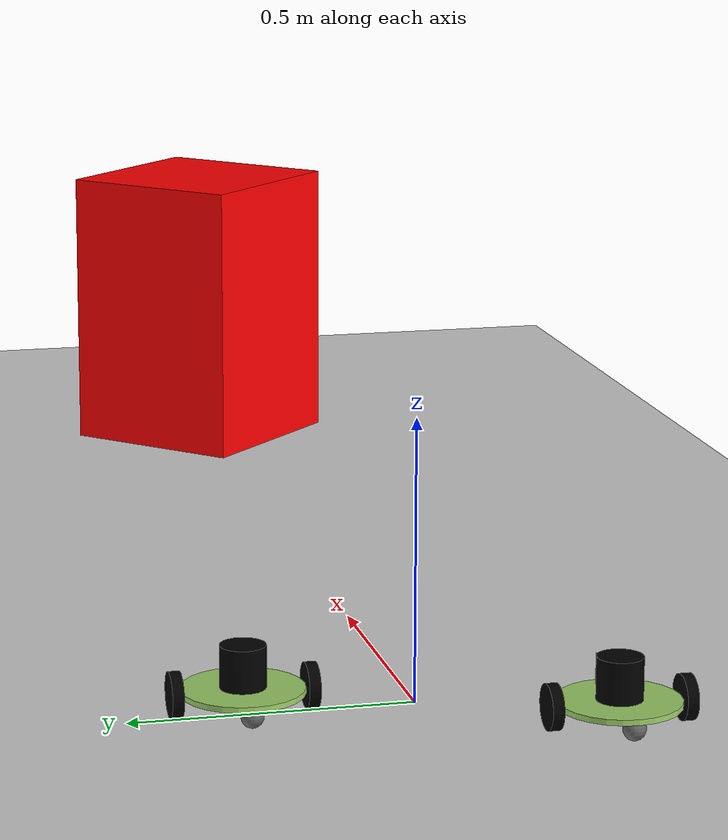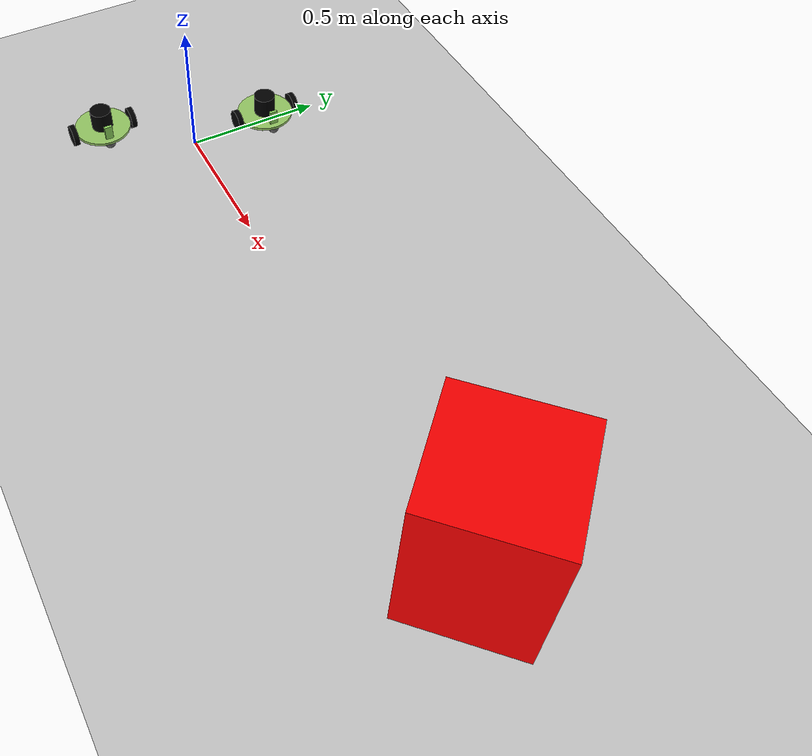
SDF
<?xml version='1.0' encoding='UTF-8'?>
<sdf version="1.8">
    <world name="car_world">
        <physics name="1ms" type="ignored">
            <max_step_size>0.001</max_step_size>
            <real_time_factor>1.0</real_time_factor>
        </physics>
        <plugin filename="gz-sim-physics-system" name="gz::sim::systems::Physics">
        </plugin>
        <plugin filename="gz-sim-user-commands-system" name="gz::sim::systems::UserCommands">
        </plugin>
        <plugin filename="gz-sim-scene-broadcaster-system" name="gz::sim::systems::SceneBroadcaster">
        </plugin>
        <plugin filename="gz-sim-sensors-system" name="gz::sim::systems::Sensors">
            <render_engine>ogre2</render_engine>
        </plugin>

        <light type="directional" name="sun">
            <cast_shadows>true</cast_shadows>
            <pose>0 0 10 0 0 0</pose>
            <diffuse>0.8 0.8 0.8 1</diffuse>
            <specular>0.2 0.2 0.2 1</specular>
            <attenuation>
                <range>1000</range>
                <constant>0.9</constant>
                <linear>0.01</linear>
                <quadratic>0.001</quadratic>
            </attenuation>
            <direction>-0.5 0.1 -0.9</direction>
        </light>

        <model name="ground_plane">
            <static>true</static>
            <link name="link">
                <collision name="collision">
                <geometry>
                    <plane>
                    <normal>0 0 1</normal>
                    </plane>
                </geometry>
                </collision>
                <visual name="visual">
                <geometry>
                    <plane>
                    <normal>0 0 1</normal>
                    <size>8 3</size>
                    </plane>
                </geometry>
                <material>
                    <ambient>0.8 0.8 0.8 1</ambient>
                    <diffuse>0.8 0.8 0.8 1</diffuse>
                    <specular>0.8 0.8 0.8 1</specular>
                </material>
                </visual>
            </link>
        </model>

        <model name="jetbot1" canonical_link="chassis">
            <pose relative_to="world">-0.2 -0.3 0 0 0 0</pose>   <!--the pose is relative to the world by default-->

            <!-- sensor frames -->
            <frame name="lidar_frame" attached_to="chassis">
                <pose>0 0 0.1 0 0 0</pose>
            </frame>

            <frame name="camera_frame" attached_to="chassis">
                <pose>0 0 0.1 0 0 0</pose>
            </frame>

            <!--chassis-->
            <link name="chassis">
                <pose relative_to="__model__">0 0 0.045 0 0 0</pose>
                <inertial> <!--inertial properties of the link mass, inertia matix-->
                    <mass>1.14395</mass>
                    <inertia>
                        <ixx>0.00095329</ixx>
                        <ixy>0</ixy>
                        <ixz>0</ixz>
                        <iyy>0.00381317</iyy>
                        <iyz>0</iyz>
                        <izz>0.00476646</izz>
                    </inertia>
                </inertial>
                <visual name="visual">
                    <geometry>
                        <cylinder>
                            <radius>0.107</radius>
                            <length>0.01</length>
                        </cylinder>
                    </geometry>
                    <!--Color of the link-->
                    <material>
                        <ambient>0.6 0.8 0.4 1</ambient>
                        <diffuse>0.6 0.8 0.4 1</diffuse>
                        <specular>0.6 0.8 0.4 1</specular>
                    </material>
                </visual>
                <collision name="collision">
                    <geometry>
                        <cylinder>
                            <radius>0.107</radius>
                            <length>0.001</length>
                        </cylinder>
                    </geometry>
                </collision>
            </link>

            <!-- LIDAR 3D shape definition -->
            <link name="lidar1">
                <pose relative_to="chassis">0 0 0.04 0 0 0</pose>
                <inertial> <!--inertial properties of the link mass, inertia matix-->
                    <mass>1.14395</mass>
                    <inertia>
                        <ixx>0.00095329</ixx>
                        <ixy>0</ixy>
                        <ixz>0</ixz>
                        <iyy>0.00381317</iyy>
                        <iyz>0</iyz>
                        <izz>0.00476646</izz>
                    </inertia>
                </inertial>
                <visual name="visual">
                    <geometry>
                        <cylinder>
                            <radius>0.04</radius>
                            <length>0.08</length>
                        </cylinder>
                    </geometry>
                    <!--Color of the link-->
                    <material>
                        <ambient>0.0 0.0 0.0 1</ambient>
                        <diffuse>0.0 0.0 0.0 1</diffuse>
                        <specular>0.0 0.0 0.0 1</specular>
                    </material>
                </visual>
                <collision name="collision">
                    <geometry>
                        <cylinder>
                            <radius>0.04</radius>
                            <length>0.08</length>
                        </cylinder>
                    </geometry>
                </collision>

                <!-- LIDAR sensor parameters -->
                <sensor name="gpu_lidar" type="gpu_lidar">"
                    <pose relative_to="lidar_frame">0 0 -0.02 0 0 0</pose>
                    <topic>/J0/lidar</topic>
                    <update_rate>5</update_rate>
                    <ray>
                        <scan>
                            <horizontal>
                                <samples>360</samples>
                                <resolution>1</resolution>
                                <min_angle>-3.14159</min_angle>
                                <max_angle>3.14159</max_angle>
                            </horizontal>
                            <vertical>
                                <samples>1</samples>
                                <resolution>0.01</resolution>
                                <min_angle>0</min_angle>
                                <max_angle>0</max_angle>
                            </vertical>
                        </scan>
                        <range>
                            <min>0.15</min>
                            <max>12.0</max>
                            <resolution>0.01</resolution>
                        </range>
                    </ray>
                    <always_on>1</always_on>
                    <visualize>true</visualize>
                </sensor>
            </link>

            <!-- CAMERA 3D shape definition -->
            <link name="camera1">
                <pose relative_to="chassis">0.08 0 0.03 0 0 0</pose>
                <inertial> <!--inertial properties of the link mass, inertia matix-->
                    <mass>0.1</mass>
                    <inertia>
                        <ixx>0.00095329</ixx>
                        <ixy>0</ixy>
                        <ixz>0</ixz>
                        <iyy>0.00381317</iyy>
                        <iyz>0</iyz>
                        <izz>0.00476646</izz>
                    </inertia>
                </inertial>
                <visual name="visual">
                    <geometry>
                        <box>
                            <size>0.01 0.03 0.06</size>
                        </box>
                    </geometry>
                    <!--Color of the link-->
                    <material>
                        <ambient>0.6 0.9 0.4 1</ambient>
                        <diffuse>0.6 0.9 0.4 1</diffuse>
                        <specular>0.6 0.9 0.4 1</specular>
                    </material>
                </visual>
                <collision name="collision">
                    <geometry>
                        <cylinder>
                            <radius>0.04</radius>
                            <length>0.08</length>
                        </cylinder>
                    </geometry>
                </collision>

                <!-- CAMERA sensor parameters -->
                <sensor name="rgb_camera" type="camera">
                    <pose relative_to="camera_frame">0 0 0 0 0 0</pose>
                    <always_on>true</always_on>
                    <visualize>true</visualize>
                    <update_rate>5</update_rate>
                    <topic>/J0/camera/image_raw</topic>
                    <gz_frame_id>camera_rgb_frame</gz_frame_id>
                    <camera name="intel_realsense_r200">
                        <camera_info_topic>/J0/camera/camera_info</camera_info_topic>
                        <horizontal_fov>1.02974</horizontal_fov>
                        <image>
                            <width>320</width>
                            <height>240</height>
                            <format>R8G8B8</format>
                        </image>
                        <clip>
                            <near>0.02</near>
                            <far>300</far>
                        </clip>
                    </camera>
                </sensor>
            </link>

            <!--Left wheel 3D shape definition-->
            <link name="left_wheel">
                <pose relative_to="chassis">0 0.117 0 -1.5707 0 0</pose> <!--angles are in radian-->
                <inertial>
                    <mass>1</mass>
                    <inertia>
                        <ixx>0.00043333</ixx>
                        <ixy>0</ixy>
                        <ixz>0</ixz>
                        <iyy>0.00043333</iyy>
                        <iyz>0</iyz>
                        <izz>0.0008</izz>
                    </inertia>
                </inertial>
                <visual name="visual">
                    <geometry>
                        <cylinder>
                            <radius>0.04</radius>
                            <length>0.02</length>
                        </cylinder>
                    </geometry>
                    <material>
                        <ambient>0.0 0.0 0.0 1</ambient>
                        <diffuse>0.0 0.0 0.0 1</diffuse>
                        <specular>0.0 0.0 0.0 1</specular>
                    </material>
                </visual>
                <collision name="collision">
                    <geometry>
                        <cylinder>
                            <radius>0.04</radius>
                            <length>0.02</length>
                        </cylinder>
                    </geometry>
                </collision>
            </link>

            <!--Right wheel 3D shape definition-->
            <link name="right_wheel">
                <pose relative_to="chassis">0 -0.117 0 -1.5707 0 0</pose> <!--angles are in radian-->
                <inertial>
                    <mass>1</mass>
                    <inertia>
                        <ixx>0.00043333</ixx>
                        <ixy>0</ixy>
                        <ixz>0</ixz>
                        <iyy>0.00043333</iyy>
                        <iyz>0</iyz>
                        <izz>0.0008</izz>
                    </inertia>
                </inertial>
                <visual name="visual">
                    <geometry>
                        <cylinder>
                            <radius>0.04</radius>
                            <length>0.02</length>
                        </cylinder>
                    </geometry>
                    <material>
                        <ambient>0.0 0.0 0.0 1</ambient>
                        <diffuse>0.0 0.0 0.0 1</diffuse>
                        <specular>0.0 0.0 0.0 1</specular>
                    </material>
                </visual>
                <collision name="collision">
                    <geometry>
                        <cylinder>
                            <radius>0.04</radius>
                            <length>0.02</length>
                        </cylinder>
                    </geometry>
                </collision>
            </link>

            <!--arbitrary frame-->
            <frame name="caster_frame0" attached_to="chassis">
                <pose>0.08 0 -0.02 0 0 0</pose>
            </frame>

            <!--caster wheel-->
            <link name="caster0">
                <pose relative_to="caster_frame0"/>
                <inertial>
                    <mass>1</mass>
                    <inertia>
                        <ixx>0.00016</ixx>
                        <ixy>0</ixy>
                        <ixz>0</ixz>
                        <iyy>0.00016</iyy>
                        <iyz>0</iyz>
                        <izz>0.00016</izz>
                    </inertia>
                </inertial>
                <visual name="visual">
                    <geometry>
                        <sphere>
                            <radius>0.02</radius>
                        </sphere>
                    </geometry>
                    <material>
                        <ambient>1 1 1 1</ambient>
                        <diffuse>0.4 0.4 0.4 1</diffuse>
                        <specular>0.4 0.4 0.4 1</specular>
                    </material>
                </visual>
                <collision name="collision">
                    <geometry>
                        <sphere>
                            <radius>0.02</radius>
                        </sphere>
                    </geometry>
                </collision>
            </link>

            <!--arbitrary frame-->
            <frame name="caster_frame1" attached_to="chassis">
                <pose>-0.08 0 -0.02 0 0 0</pose>
            </frame>

            <!--caster wheel-->
            <link name="caster1">
                <pose relative_to="caster_frame1"/>
                <inertial>
                    <mass>1</mass>
                    <inertia>
                        <ixx>0.00016</ixx>
                        <ixy>0</ixy>
                        <ixz>0</ixz>
                        <iyy>0.00016</iyy>
                        <iyz>0</iyz>
                        <izz>0.00016</izz>
                    </inertia>
                </inertial>
                <visual name="visual">
                    <geometry>
                        <sphere>
                            <radius>0.02</radius>
                        </sphere>
                    </geometry>
                    <material>
                        <ambient>0.4 0.4 0.4 1</ambient>
                        <diffuse>0.4 0.4 0.4 1</diffuse>
                        <specular>0.4 0.4 0.4 1</specular>
                    </material>
                </visual>
                <collision name="collision">
                    <geometry>
                        <sphere>
                            <radius>0.02</radius>
                        </sphere>
                    </geometry>
                </collision>
            </link>

            <!--left wheel joint-->
            <joint name="left_wheel_joint" type="revolute">
                <pose relative_to="left_wheel"/>
                <parent>chassis</parent>
                <child>left_wheel</child>
                <axis>
                    <xyz expressed_in="__model__">0 1 0</xyz> <!--can be descired to any frame or even arbitrary frames-->
                    <limit>
                        <lower>-1.79769e+308</lower>    <!--negative infinity-->
                        <upper>1.79769e+308</upper>     <!--positive infinity-->
                    </limit>
                </axis>
            </joint>

            <!--right wheel joint-->
            <joint name="right_wheel_joint" type="revolute">
                <pose relative_to="right_wheel"/>
                <parent>chassis</parent>
                <child>right_wheel</child>
                <axis>
                    <xyz expressed_in="__model__">0 1 0</xyz>
                    <limit>
                        <lower>-1.79769e+308</lower>    <!--negative infinity-->
                        <upper>1.79769e+308</upper>     <!--positive infinity-->
                    </limit>
                </axis>
            </joint>

            <!--caster wheel joint--> <!--pose defult value is the child-->
            <joint name="caster_wheel_front" type="ball">
                <parent>chassis</parent>
                <child>caster0</child>
            </joint>
            <joint name="caster_wheel_rear" type="ball">
                <parent>chassis</parent>
                <child>caster1</child>
            </joint>

            <joint name="lidar_joint" type="fixed">
                <parent>chassis</parent>
                <child>lidar1</child>
            </joint>

            <joint name="camera_joint" type="fixed">
                <parent>chassis</parent>
                <child>camera1</child>
            </joint>

            <!-- cmd_vel and odometry -->
            <plugin filename="gz-sim-diff-drive-system" name="gz::sim::systems::DiffDrive">
                <left_joint>left_wheel_joint</left_joint>
                <right_joint>right_wheel_joint</right_joint>
                <wheel_separation>0.12</wheel_separation>
                <wheel_radius>0.04</wheel_radius>
                <odom_publish_frequency>1</odom_publish_frequency>
                <topic>/J0/cmd_vel</topic>
                <odom_topic>/J0/odom</odom_topic>
                <tf_topic>/J0/tf</tf_topic>
            </plugin>

        </model>

        <model name="jetbot2" canonical_link="chassis">
            <pose relative_to="world">0 0.3 0 0 0 0</pose>   <!--the pose is relative to the world by default-->

            <!-- sensor frames -->
            <frame name="lidar_frame" attached_to="chassis">
                <pose>0 0 0.1 0 0 0</pose>
            </frame>

            <frame name="camera_frame" attached_to="chassis">
                <pose>0 0 0.1 0 0 0</pose>
            </frame>

            <!--chassis-->
            <link name="chassis">
                <pose relative_to="__model__">0 0 0.045 0 0 0</pose>
                <inertial> <!--inertial properties of the link mass, inertia matix-->
                    <mass>1.14395</mass>
                    <inertia>
                        <ixx>0.00095329</ixx>
                        <ixy>0</ixy>
                        <ixz>0</ixz>
                        <iyy>0.00381317</iyy>
                        <iyz>0</iyz>
                        <izz>0.00476646</izz>
                    </inertia>
                </inertial>
                <visual name="visual">
                    <geometry>
                        <cylinder>
                            <radius>0.107</radius>
                            <length>0.01</length>
                        </cylinder>
                    </geometry>
                    <!--Color of the link-->
                    <material>
                        <ambient>0.6 0.8 0.4 1</ambient>
                        <diffuse>0.6 0.8 0.4 1</diffuse>
                        <specular>0.6 0.8 0.4 1</specular>
                    </material>
                </visual>
                <collision name="collision">
                    <geometry>
                        <cylinder>
                            <radius>0.107</radius>
                            <length>0.001</length>
                        </cylinder>
                    </geometry>
                </collision>
            </link>

            <!-- LIDAR 3D shape definition -->
            <link name="lidar2">
                <pose relative_to="chassis">0 0 0.04 0 0 0</pose>
                <inertial> <!--inertial properties of the link mass, inertia matix-->
                    <mass>1.14395</mass>
                    <inertia>
                        <ixx>0.00095329</ixx>
                        <ixy>0</ixy>
                        <ixz>0</ixz>
                        <iyy>0.00381317</iyy>
                        <iyz>0</iyz>
                        <izz>0.00476646</izz>
                    </inertia>
                </inertial>
                <visual name="visual">
                    <geometry>
                        <cylinder>
                            <radius>0.04</radius>
                            <length>0.08</length>
                        </cylinder>
                    </geometry>
                    <!--Color of the link-->
                    <material>
                        <ambient>0.0 0.0 0.0 1</ambient>
                        <diffuse>0.0 0.0 0.0 1</diffuse>
                        <specular>0.0 0.0 0.0 1</specular>
                    </material>
                </visual>
                <collision name="collision">
                    <geometry>
                        <cylinder>
                            <radius>0.04</radius>
                            <length>0.08</length>
                        </cylinder>
                    </geometry>
                </collision>

                <!-- LIDAR sensor parameters -->
                <sensor name="gpu_lidar" type="gpu_lidar">"
                    <pose relative_to="lidar_frame">0 0 -0.02 0 0 0</pose>
                    <topic>/J1/lidar</topic>
                    <update_rate>5</update_rate>
                    <ray>
                        <scan>
                            <horizontal>
                                <samples>360</samples>
                                <resolution>1</resolution>
                                <min_angle>-3.14159</min_angle>
                                <max_angle>3.14159</max_angle>
                            </horizontal>
                            <vertical>
                                <samples>1</samples>
                                <resolution>0.01</resolution>
                                <min_angle>0</min_angle>
                                <max_angle>0</max_angle>
                            </vertical>
                        </scan>
                        <range>
                            <min>0.15</min>
                            <max>12.0</max>
                            <resolution>0.01</resolution>
                        </range>
                    </ray>
                    <always_on>1</always_on>
                    <visualize>true</visualize>
                </sensor>
            </link>

            <!-- CAMERA 3D shape definition -->
            <link name="camera2">
                <pose relative_to="chassis">0.08 0 0.03 0 0 0</pose>
                <inertial> <!--inertial properties of the link mass, inertia matix-->
                    <mass>0.1</mass>
                    <inertia>
                        <ixx>0.00095329</ixx>
                        <ixy>0</ixy>
                        <ixz>0</ixz>
                        <iyy>0.00381317</iyy>
                        <iyz>0</iyz>
                        <izz>0.00476646</izz>
                    </inertia>
                </inertial>
                <visual name="visual">
                    <geometry>
                        <box>
                            <size>0.01 0.03 0.06</size>
                        </box>
                    </geometry>
                    <!--Color of the link-->
                    <material>
                        <ambient>0.6 0.9 0.4 1</ambient>
                        <diffuse>0.6 0.9 0.4 1</diffuse>
                        <specular>0.6 0.9 0.4 1</specular>
                    </material>
                </visual>
                <collision name="collision">
                    <geometry>
                        <cylinder>
                            <radius>0.04</radius>
                            <length>0.08</length>
                        </cylinder>
                    </geometry>
                </collision>

                <!-- CAMERA sensor parameters -->
                <sensor name="rgb_camera" type="camera">
                    <pose relative_to="camera_frame">0 0 0 0 0 0</pose>
                    <always_on>true</always_on>
                    <visualize>true</visualize>
                    <update_rate>5</update_rate>
                    <topic>/J1/camera/image_raw</topic>
                    <gz_frame_id>camera_rgb_frame</gz_frame_id>
                    <camera name="intel_realsense_r200">
                        <camera_info_topic>/J1/camera/camera_info</camera_info_topic>
                        <horizontal_fov>1.02974</horizontal_fov>
                        <image>
                            <width>320</width>
                            <height>240</height>
                            <format>R8G8B8</format>
                        </image>
                        <clip>
                            <near>0.02</near>
                            <far>300</far>
                        </clip>
                    </camera>
                </sensor>
            </link>

            <!--Left wheel 3D shape definition-->
            <link name="left_wheel">
                <pose relative_to="chassis">0 0.117 0 -1.5707 0 0</pose> <!--angles are in radian-->
                <inertial>
                    <mass>1</mass>
                    <inertia>
                        <ixx>0.00043333</ixx>
                        <ixy>0</ixy>
                        <ixz>0</ixz>
                        <iyy>0.00043333</iyy>
                        <iyz>0</iyz>
                        <izz>0.0008</izz>
                    </inertia>
                </inertial>
                <visual name="visual">
                    <geometry>
                        <cylinder>
                            <radius>0.04</radius>
                            <length>0.02</length>
                        </cylinder>
                    </geometry>
                    <material>
                        <ambient>0.0 0.0 0.0 1</ambient>
                        <diffuse>0.0 0.0 0.0 1</diffuse>
                        <specular>0.0 0.0 0.0 1</specular>
                    </material>
                </visual>
                <collision name="collision">
                    <geometry>
                        <cylinder>
                            <radius>0.04</radius>
                            <length>0.02</length>
                        </cylinder>
                    </geometry>
                </collision>
            </link>

            <!--Right wheel 3D shape definition-->
            <link name="right_wheel">
                <pose relative_to="chassis">0 -0.117 0 -1.5707 0 0</pose> <!--angles are in radian-->
                <inertial>
                    <mass>1</mass>
                    <inertia>
                        <ixx>0.00043333</ixx>
                        <ixy>0</ixy>
                        <ixz>0</ixz>
                        <iyy>0.00043333</iyy>
                        <iyz>0</iyz>
                        <izz>0.0008</izz>
                    </inertia>
                </inertial>
                <visual name="visual">
                    <geometry>
                        <cylinder>
                            <radius>0.04</radius>
                            <length>0.02</length>
                        </cylinder>
                    </geometry>
                    <material>
                        <ambient>0.0 0.0 0.0 1</ambient>
                        <diffuse>0.0 0.0 0.0 1</diffuse>
                        <specular>0.0 0.0 0.0 1</specular>
                    </material>
                </visual>
                <collision name="collision">
                    <geometry>
                        <cylinder>
                            <radius>0.04</radius>
                            <length>0.02</length>
                        </cylinder>
                    </geometry>
                </collision>
            </link>

            <!--arbitrary frame-->
            <frame name="caster_frame0" attached_to="chassis">
                <pose>0.08 0 -0.02 0 0 0</pose>
            </frame>

            <!--caster wheel-->
            <link name="caster0">
                <pose relative_to="caster_frame0"/>
                <inertial>
                    <mass>1</mass>
                    <inertia>
                        <ixx>0.00016</ixx>
                        <ixy>0</ixy>
                        <ixz>0</ixz>
                        <iyy>0.00016</iyy>
                        <iyz>0</iyz>
                        <izz>0.00016</izz>
                    </inertia>
                </inertial>
                <visual name="visual">
                    <geometry>
                        <sphere>
                            <radius>0.02</radius>
                        </sphere>
                    </geometry>
                    <material>
                        <ambient>0.4 0.4 0.4 1</ambient>
                        <diffuse>0.4 0.4 0.4 1</diffuse>
                        <specular>0.4 0.4 0.4 1</specular>
                    </material>
                </visual>
                <collision name="collision">
                    <geometry>
                        <sphere>
                            <radius>0.02</radius>
                        </sphere>
                    </geometry>
                </collision>
            </link>

            <!--arbitrary frame-->
            <frame name="caster_frame1" attached_to="chassis">
                <pose>-0.08 0 -0.02 0 0 0</pose>
            </frame>

            <!--caster wheel-->
            <link name="caster1">
                <pose relative_to="caster_frame1"/>
                <inertial>
                    <mass>1</mass>
                    <inertia>
                        <ixx>0.00016</ixx>
                        <ixy>0</ixy>
                        <ixz>0</ixz>
                        <iyy>0.00016</iyy>
                        <iyz>0</iyz>
                        <izz>0.00016</izz>
                    </inertia>
                </inertial>
                <visual name="visual">
                    <geometry>
                        <sphere>
                            <radius>0.02</radius>
                        </sphere>
                    </geometry>
                    <material>
                        <ambient>0.4 0.4 0.4 1</ambient>
                        <diffuse>0.4 0.4 0.4 1</diffuse>
                        <specular>0.4 0.4 0.4 1</specular>
                    </material>
                </visual>
                <collision name="collision">
                    <geometry>
                        <sphere>
                            <radius>0.02</radius>
                        </sphere>
                    </geometry>
                </collision>
            </link>

            <!--left wheel joint-->
            <joint name="left_wheel_joint" type="revolute">
                <pose relative_to="left_wheel"/>
                <parent>chassis</parent>
                <child>left_wheel</child>
                <axis>
                    <xyz expressed_in="__model__">0 1 0</xyz> <!--can be descired to any frame or even arbitrary frames-->
                    <limit>
                        <lower>-1.79769e+308</lower>    <!--negative infinity-->
                        <upper>1.79769e+308</upper>     <!--positive infinity-->
                    </limit>
                </axis>
            </joint>

            <!--right wheel joint-->
            <joint name="right_wheel_joint" type="revolute">
                <pose relative_to="right_wheel"/>
                <parent>chassis</parent>
                <child>right_wheel</child>
                <axis>
                    <xyz expressed_in="__model__">0 1 0</xyz>
                    <limit>
                        <lower>-1.79769e+308</lower>    <!--negative infinity-->
                        <upper>1.79769e+308</upper>     <!--positive infinity-->
                    </limit>
                </axis>
            </joint>

            <!--caster wheel joint--> <!--pose defult value is the child-->
            <joint name="caster_wheel_front" type="ball">
                <parent>chassis</parent>
                <child>caster0</child>
            </joint>
            <joint name="caster_wheel_rear" type="ball">
                <parent>chassis</parent>
                <child>caster1</child>
            </joint>

            <joint name="lidar_joint" type="fixed">
                <parent>chassis</parent>
                <child>lidar2</child>
            </joint>

            <joint name="camera_joint" type="fixed">
                <parent>chassis</parent>
                <child>camera2</child>
            </joint>

            <!-- cmd_vel and odometry -->
            <plugin filename="gz-sim-diff-drive-system" name="gz::sim::systems::DiffDrive">
                <left_joint>left_wheel_joint</left_joint>
                <right_joint>right_wheel_joint</right_joint>
                <wheel_separation>0.12</wheel_separation>
                <wheel_radius>0.04</wheel_radius>
                <odom_publish_frequency>1</odom_publish_frequency>
                <topic>/J1/cmd_vel</topic>
                <odom_topic>/J1/odom</odom_topic>
                <tf_topic>/J1/tf</tf_topic>
            </plugin>

        </model>

        <model name="box_obstacle">
            <pose relative_to="world"> 2 0 0.3 0 0 0.785</pose> <link name="box_link">
                <inertial>
                <mass>1.0</mass>
                <inertia>
                    <ixx>0.01</ixx>
                    <ixy>0</ixy>
                    <ixz>0</ixz>
                    <iyy>0.01</iyy>
                    <iyz>0</iyz>
                    <izz>0.01</izz>
                </inertia>
                </inertial>
                <collision name="collision">
                <geometry>
                    <box>
                    <size>0.4 0.4 0.6</size> </box>
                </geometry>
                </collision>
                <visual name="visual">
                <geometry>
                    <box>
                    <size>0.4 0.4 0.6</size>
                    </box>
                </geometry>
                <material>
                    <ambient>1 0 0 1</ambient> <diffuse>1 0 0 1</diffuse>
                    <specular>0.1 0.1 0.1 1</specular>
                </material>
                </visual>
            </link>
        </model>

    </world>
</sdf>
